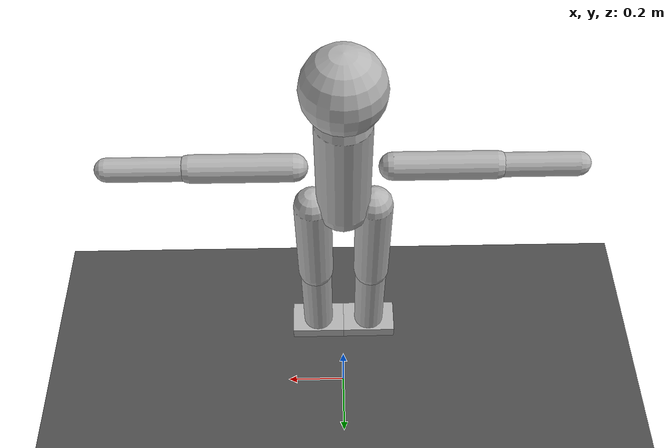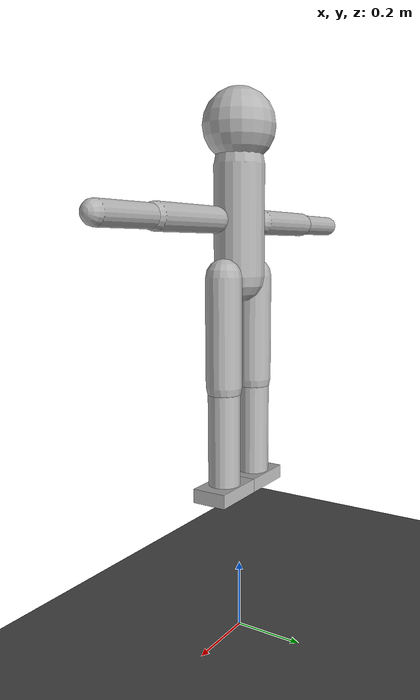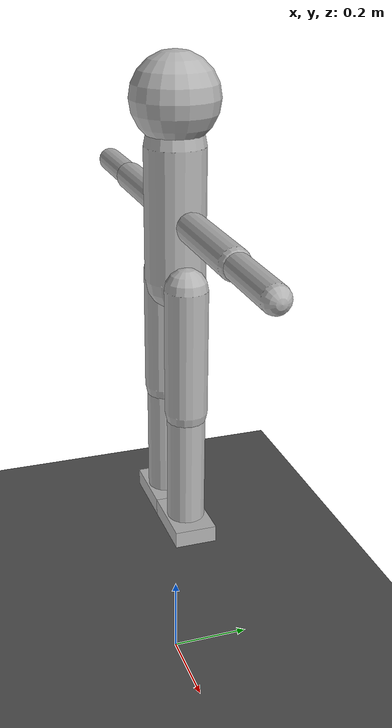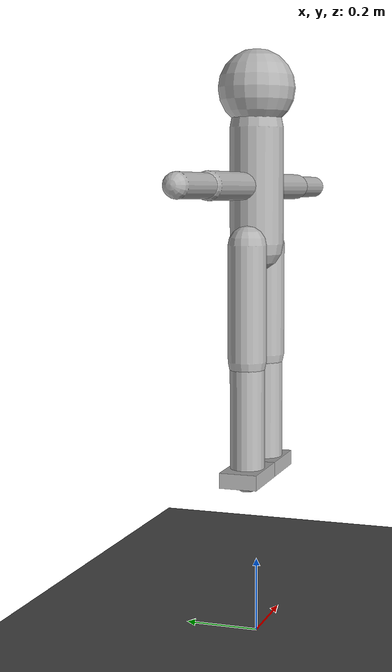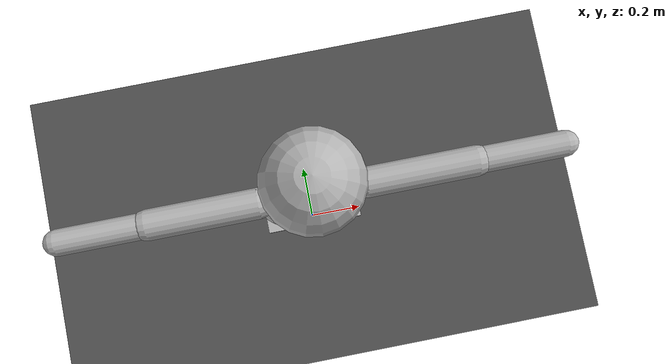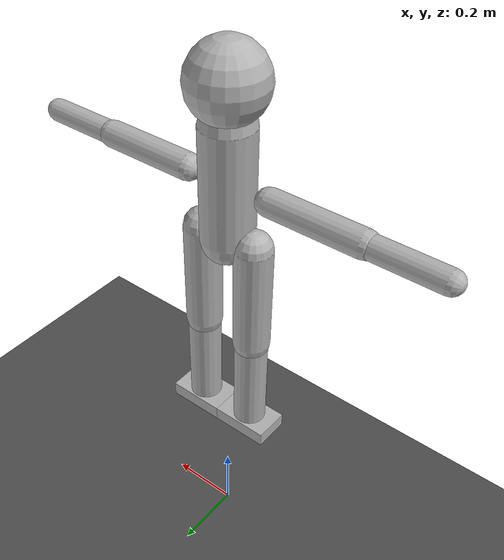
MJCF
<mujoco model="humanoid_rl">
  <compiler angle="radian" inertiafromgeom="true"/>
  <option gravity="0 0 -9.81" timestep="0.005"/>

  <asset>
    <material name="body" rgba="0.7 0.7 0.7 1"/>
    <material name="floor" rgba="0.3 0.3 0.3 1"/>
  </asset>

  <worldbody>
    <light pos="0 0 4"/>
    <camera name="cam" pos="0 -3.5 1.2" xyaxes="1 0 0 0 0.6 1"/>
    <geom name="ground" type="plane" size="4 4 0.1" material="floor" friction="2.0 0.5 0.5"/>

    <!-- 根节点 -->
    <body name="torso" pos="0 0 1.2">
      <freejoint/>
      <geom type="capsule" size="0.07 0.15" mass="6" material="body"/>

      <!-- 头部 -->
      <body name="head" pos="0 0 0.25">
        <geom type="sphere" size="0.1" mass="1" material="body"/>
        <joint name="neck" type="hinge" axis="0 0 1" range="-0.5 0.5" damping="0.5"/>
      </body>

      <!-- 左臂 -->
      <body name="l_shoulder" pos="-0.12 0 0">
        <joint name="l_shoulder" type="hinge" axis="0 1 0" range="-1.5 1.5" damping="0.5"/>
        <geom type="capsule" fromto="0 0 0 -0.25 0 0" size="0.035 0.05" mass="1" material="body"/>
        <body pos="-0.25 0 0">
          <joint name="l_elbow" type="hinge" axis="0 1 0" range="-1.5 0" damping="0.3"/>
          <geom type="capsule" fromto="0 0 0 -0.2 0 0" size="0.03 0.04" mass="0.8" material="body"/>
        </body>
      </body>

      <!-- 右臂 -->
      <body name="r_shoulder" pos="0.12 0 0">
        <joint name="r_shoulder" type="hinge" axis="0 1 0" range="-1.5 1.5" damping="0.5"/>
        <geom type="capsule" fromto="0 0 0 0.25 0 0" size="0.035 0.05" mass="1" material="body"/>
        <body pos="0.25 0 0">
          <joint name="r_elbow" type="hinge" axis="0 1 0" range="-1.5 0" damping="0.3"/>
          <geom type="capsule" fromto="0 0 0 0.2 0 0" size="0.03 0.04" mass="0.8" material="body"/>
        </body>
      </body>

      <!-- 左腿 -->
      <body name="l_hip" pos="-0.08 0 -0.15">
        <joint name="l_hip" type="hinge" axis="0 1 0" range="-1 1" damping="1"/>
        <geom type="capsule" fromto="0 0 0 0 0 -0.3" size="0.05 0.08" mass="2.5" material="body"/>
        <body pos="0 0 -0.3">
          <joint name="l_knee" type="hinge" axis="0 1 0" range="0 2" damping="1"/>
          <geom type="capsule" fromto="0 0 0 0 0 -0.3" size="0.045 0.07" mass="2" material="body"/>
          <body pos="0 0 -0.3">
            <joint name="l_ankle" type="hinge" axis="0 1 0" range="-0.5 0.5" damping="0.5"/>
            <geom type="box" size="0.08 0.05 0.02" mass="0.5" material="body" friction="3"/>
          </body>
        </body>
      </body>

      <!-- 右腿 -->
      <body name="r_hip" pos="0.08 0 -0.15">
        <joint name="r_hip" type="hinge" axis="0 1 0" range="-1 1" damping="1"/>
        <geom type="capsule" fromto="0 0 0 0 0 -0.3" size="0.05 0.08" mass="2.5" material="body"/>
        <body pos="0 0 -0.3">
          <joint name="r_knee" type="hinge" axis="0 1 0" range="0 2" damping="1"/>
          <geom type="capsule" fromto="0 0 0 0 0 -0.3" size="0.045 0.07" mass="2" material="body"/>
          <body pos="0 0 -0.3">
            <joint name="r_ankle" type="hinge" axis="0 1 0" range="-0.5 0.5" damping="0.5"/>
            <geom type="box" size="0.08 0.05 0.02" mass="0.5" material="body" friction="3"/>
          </body>
        </body>
      </body>
    </body>
  </worldbody>

  <!-- 力矩控制执行器 -->
  <actuator>
    <motor joint="neck"        ctrllimited="true" ctrlrange="-20 20"        gear="100"/>
    <motor joint="l_shoulder"  ctrllimited="true" ctrlrange="-30 30"        gear="100"/>
    <motor joint="l_elbow"     ctrllimited="true" ctrlrange="-15 15"        gear="100"/>
    <motor joint="r_shoulder"  ctrllimited="true" ctrlrange="-30 30"        gear="100"/>
    <motor joint="r_elbow"      ctrllimited="true" ctrlrange="-15 15"        gear="100"/>
    <motor joint="l_hip"        ctrllimited="true" ctrlrange="-50 50"        gear="100"/>
    <motor joint="l_knee"       ctrllimited="true" ctrlrange="-50 50"        gear="100"/>
    <motor joint="l_ankle"      ctrllimited="true" ctrlrange="-30 30"        gear="100"/>
    <motor joint="r_hip"        ctrllimited="true" ctrlrange="-50 50"        gear="100"/>
    <motor joint="r_knee"       ctrllimited="true" ctrlrange="-50 50"        gear="100"/>
    <motor joint="r_ankle"      ctrllimited="true" ctrlrange="-30 30"        gear="100"/>
  </actuator>
</mujoco>
